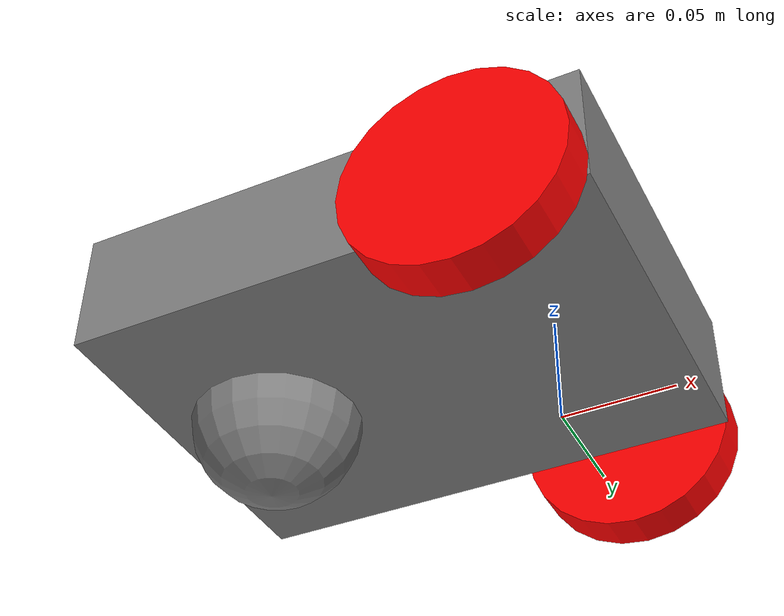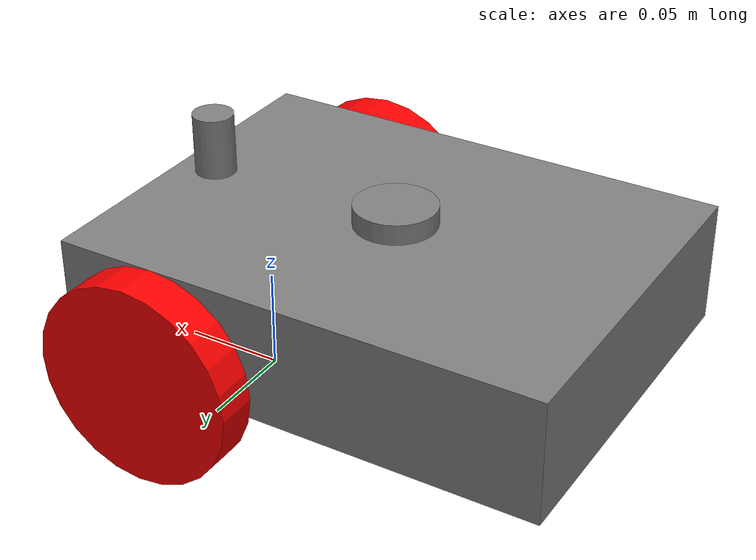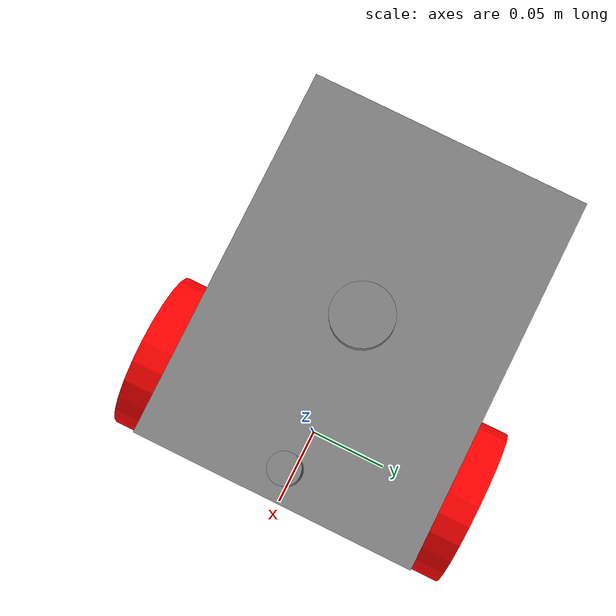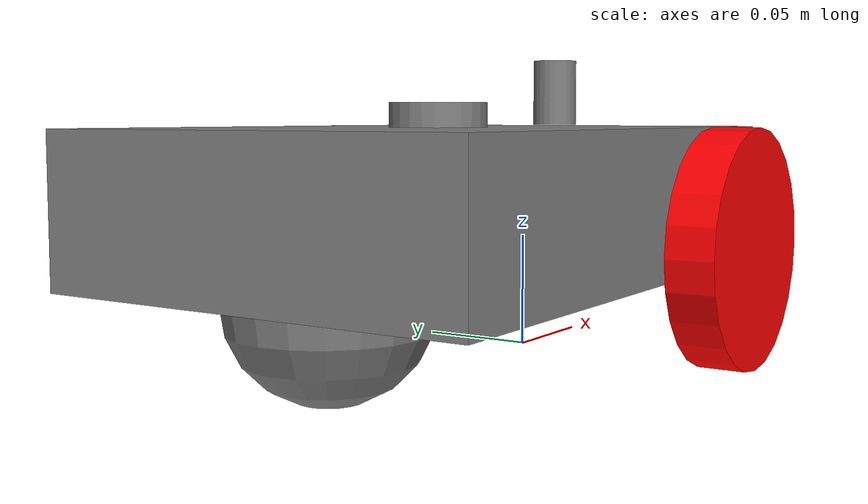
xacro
<?xml version="1.0"?>
<robot name="dtw_robot" xmlns:xacro="http://ros.org/wiki/xacro">
  <material name="gray">
    <color rgba="0.5 0.5 0.5 2.5"/>
  </material>
  <material name="red">
    <color rgba="1.0 0.0 0.0 2.5"/>
  </material>

  <xacro:macro name="wheel_macro" params="parent prefix xyz">
    <joint name="${prefix}_joint" type="continuous">
      <origin xyz="${xyz}" rpy="${radians(-90)} 0 0"/>
      <parent link="${parent}"/>
      <child  link="${prefix}_link"/>
      <axis xyz="0 0 1" />
    </joint>
    <transmission name="${prefix}_trans" type="SimpleTransmission">
      <type>transmission_interface/SimpleTransmission</type>
        <actuator name="${prefix}_motor">
          <mechanicalReduction>1</mechanicalReduction>
        </actuator>
      <joint name="${prefix}_joint">
        <hardwareInterface>hardware_interface/VelocityJointInterface</hardwareInterface>
      </joint>
    </transmission>
    <link name="${prefix}_link">
      <inertial>
        <origin xyz="0 0 0" rpy="0 0 0"/>
        <mass value="0.1"/>
        <inertia ixx="0.0001" ixy="0.0" ixz="0.0" iyy="0.0001" iyz="0.0" izz="0.0001"/>
      </inertial>
      <visual>
        <geometry>
          <cylinder radius="0.05" length="0.02" />
        </geometry>
        <material name="red"/>
      </visual>
      <collision>
        <geometry>
          <cylinder radius="0.05" length="0.02" />
        </geometry>
      </collision>
    </link>
    <gazebo reference="${prefix}_link">
      <material>Gazebo/Red</material>
      <mu1 value="2.5" />
      <mu2 value="2.5" />
      <kp value="50000" />
      <kd value="10" />
    </gazebo>
  </xacro:macro>

  <link name="base_link"/>

  <joint name="body_joint" type="fixed">
    <parent link="base_link"/>
    <child  link="body_link"/>
    <origin xyz="-0.07 0 0.07" rpy="0 0 0"/>
  </joint>
  <link name="body_link">
    <inertial>
      <origin xyz="0 0 0" rpy="0 0 0"/>
      <mass value="1.0"/>
      <inertia ixx="0.001" ixy="0.0" ixz="0.0" iyy="0.001" iyz="0.0" izz="0.001"/>
    </inertial>
    <visual>
      <origin xyz="0 0 0" rpy="0 0 0" />
      <geometry>
        <box size="0.24 0.18 0.06" />
      </geometry>
      <material name="gray" />
    </visual>
    <collision>
      <origin xyz="0 0 0" rpy="0 0 0" />
      <geometry>
        <box size="0.24 0.178 0.06" />
      </geometry>
    </collision>
  </link>
  <gazebo reference="body_link">
    <material>Gazebo/Gray</material>
  </gazebo>

  <joint name="imu_joint" type="fixed">
    <parent link="body_link"/>
    <child  link="imu_link"/>
    <origin xyz="0 0 0.035" rpy="0 0 0"/>
  </joint>
  <link name="imu_link">
    <visual>
      <origin xyz="0 0 0" rpy="0 0 0" />
      <geometry>
        <cylinder radius="0.02" length="0.01" />
      </geometry>
      <material name="gray" />
    </visual>
    <collision>
      <origin xyz="0 0 0" rpy="0 0 0" />
      <geometry>
        <cylinder radius="0.02" length="0.01" />
      </geometry>
      <material name="gray" />
    </collision>
  </link>
  <gazebo reference="imu_link">
    <gravity>true</gravity>
    <sensor name="imu_sensor" type="imu">
      <always_on>true</always_on>
      <update_rate>100</update_rate>
      <visualize>true</visualize>
      <topic>data</topic>
      <plugin filename="libgazebo_ros_imu_sensor.so" name="imu_plugin">
        <topicName>imu/data_raw</topicName>
        <bodyName>imu_link</bodyName>
        <updateRateHZ>10.0</updateRateHZ>
        <gaussianNoise>0.0</gaussianNoise>
        <xyzOffset>0 0 0</xyzOffset>
        <rpyOffset>0 0 0</rpyOffset>
        <frameName>imu_link</frameName>
      </plugin>
      <pose>0 0 0 0 0 0</pose>
    </sensor>
  </gazebo>

  <joint name="lidar_joint" type="fixed">
    <parent link="body_link"/>
    <child  link="lidar_link"/>
    <origin xyz="0.1 0 0.0455" rpy="0 0 0"/>
  </joint>
  <link name="lidar_link">
    <visual>
      <origin xyz="0 0 0" rpy="0 0 0" />
      <geometry>
        <cylinder radius="0.01" length="0.03" />
      </geometry>
      <material name="gray" />
    </visual>
    <collision>
      <origin xyz="0 0 0" rpy="0 0 0" />
      <geometry>
        <cylinder radius="0.01" length="0.03" />
      </geometry>
      <material name="gray" />
    </collision>
  </link>
  <gazebo reference="lidar_link">
    <material>Gazebo/Blue</material>
    <sensor type="ray" name="lidar">
      <pose>0 0 0 0 0 0</pose>
      <visualize>true</visualize>
      <update_rate>60</update_rate>
      <ray>
        <scan>
          <horizontal>
            <samples>1000</samples>
            <resolution>1</resolution>
            <min_angle>${radians(-130)}</min_angle>
            <max_angle>${radians(130)}</max_angle>
          </horizontal>
        </scan>
        <range>
          <min>0.10</min>
          <max>20.0</max>
        </range>
        <noise>
          <type>gaussian</type>
          <mean>0.0</mean>
          <stddev>0.01</stddev>
        </noise>
      </ray>
      <plugin name="gazebo_ros_lidar_controller" filename="libgazebo_ros_laser.so">
        <topicName>/scan</topicName>
        <frameName>/lidar_link</frameName>
      </plugin>
    </sensor>
  </gazebo>

  <xacro:wheel_macro prefix="left_wheel"  parent="base_link" xyz="0 0.1 0.05"/>
  <xacro:wheel_macro prefix="right_wheel" parent="base_link" xyz="0 -0.1 0.05"/>

  <joint name="ball_joint" type="fixed">
    <parent link="base_link"/>
    <child  link="ball_link"/>
    <origin xyz="-0.14 0 0.04" rpy="0 0 0"/>
  </joint>
  <link name="ball_link">
    <visual>
      <origin xyz="0 0 0" rpy="0 0 0" />
      <geometry>
        <sphere radius="0.04" />
      </geometry>
      <material name="gray" />
    </visual>
    <collision>
      <origin xyz="0 0 0" rpy="0 0 0" />
      <geometry>
        <sphere radius="0.04" />
      </geometry>
      <material name="gray" />
    </collision>
  </link>
  <gazebo reference="ball_link">
    <material>Gazebo/Gray</material>
    <mu1 value="0.5" />
    <mu2 value="0.5" />
  </gazebo>

  <gazebo>
    <plugin name="gazebo_ros_control" filename="libgazebo_ros_control.so">
      <robotNamespace>/dtw_robot</robotNamespace>
    </plugin>
  </gazebo>
</robot>
